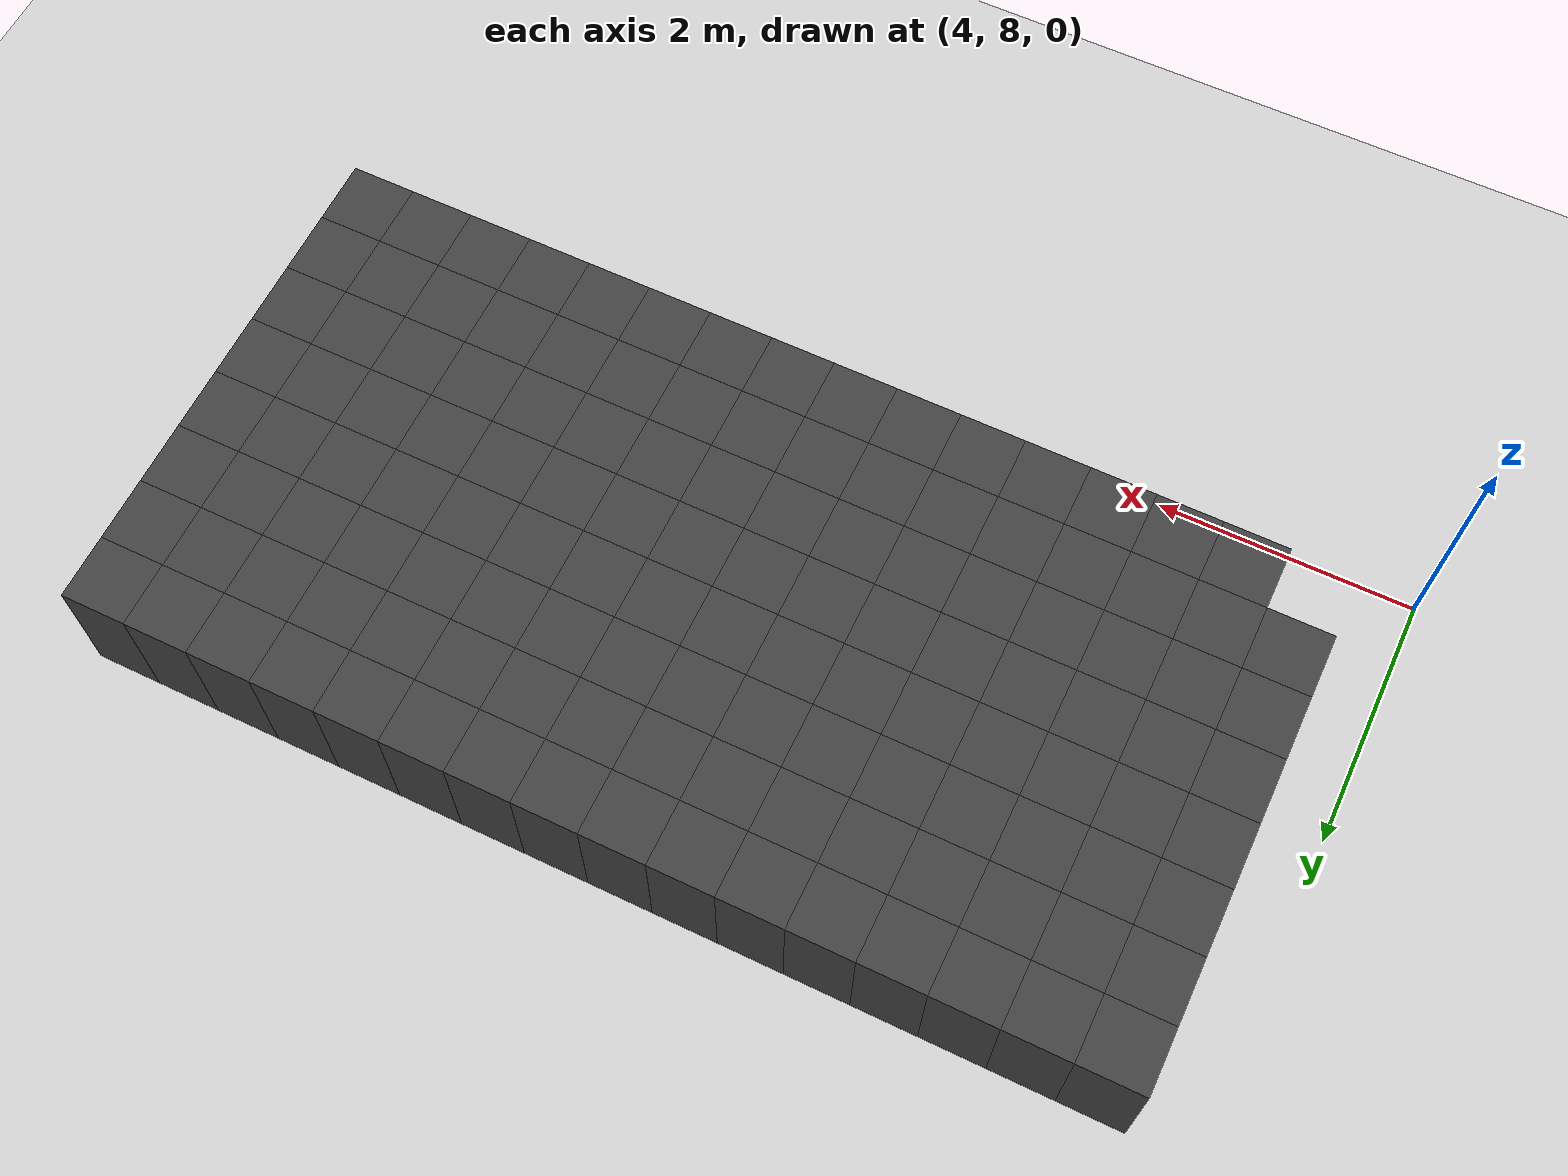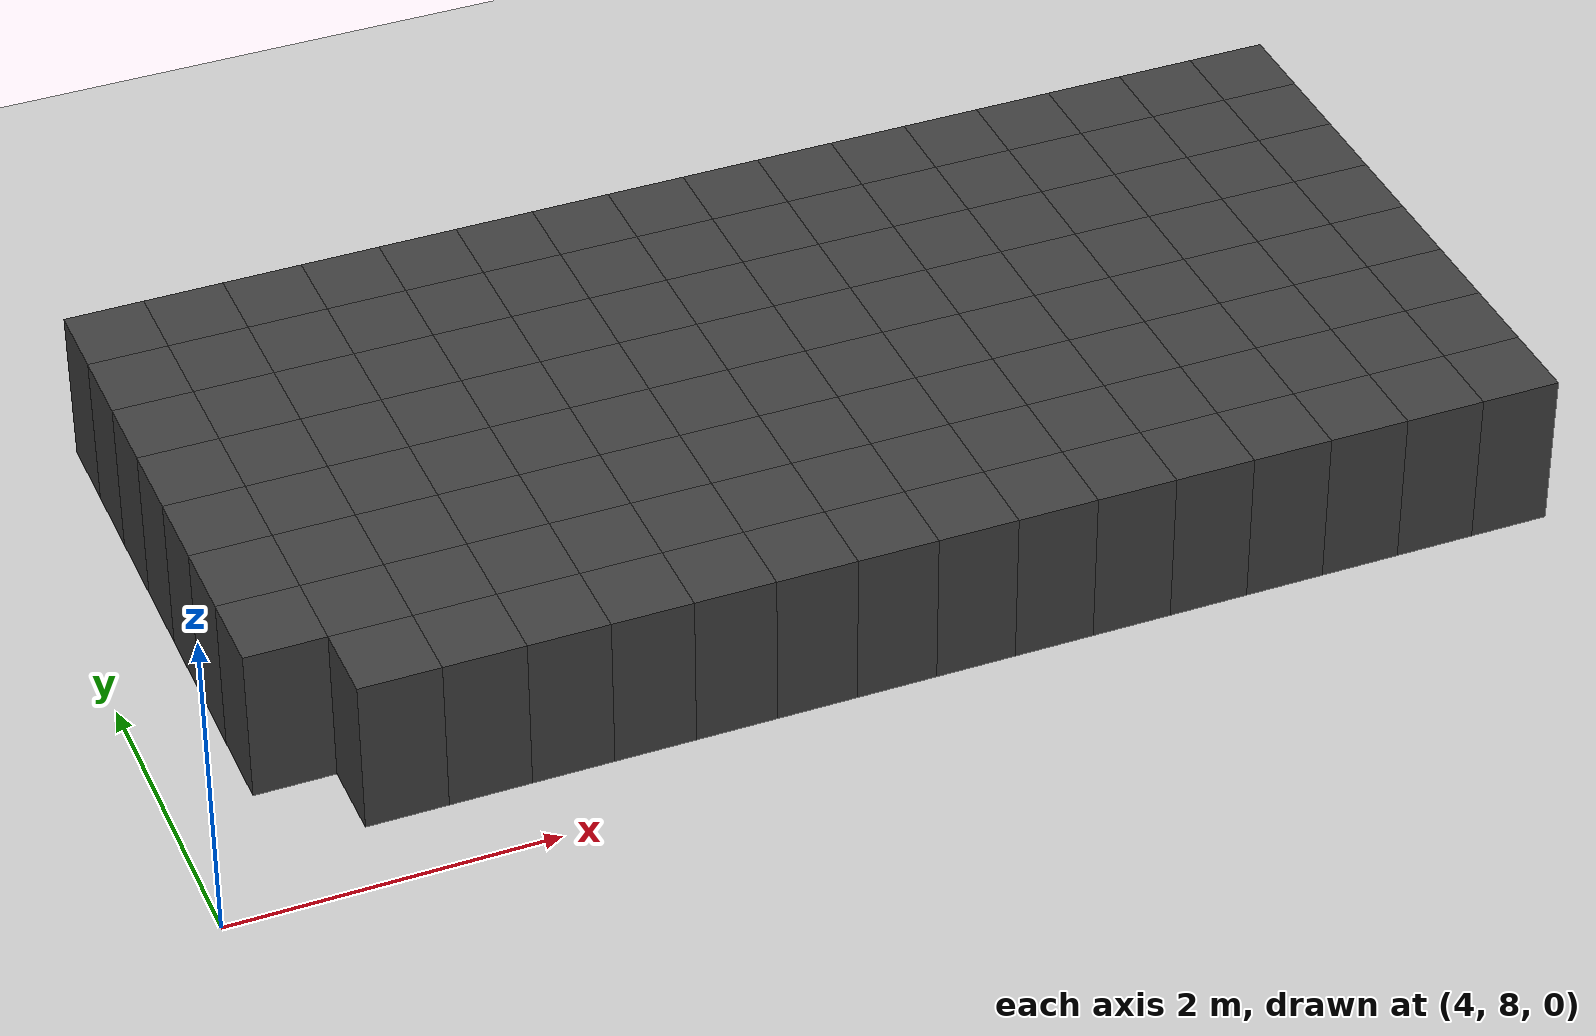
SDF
<sdf version="1.7">
 <world name="map_11672">
  <model name="ground_plane">
   <static>true</static>
   <link name="link">
    <collision name="collision">
     <geometry><plane><normal>0 0 1</normal><size>200 200</size></plane></geometry>
    </collision>
    <visual name="visual">
     <geometry><plane><normal>0 0 1</normal><size>200 200</size></plane></geometry>
     <material><ambient>0.8 0.8 0.8 1</ambient><diffuse>0.8 0.8 0.8 1</diffuse></material>
    </visual>
   </link>
  </model>
  <model name="maze_environment">
   <static>true</static>
   <link name="wall_34">
    <pose>4.750 12.250 0.500 0 0 0</pose>
    <collision name="col"><geometry><box><size>0.5 0.5 1.0</size></box></geometry></collision>
    <visual name="vis">
     <geometry><box><size>0.5 0.5 1.0</size></box></geometry>
     <material><ambient>0.15 0.15 0.15 1</ambient><diffuse>0.25 0.25 0.25 1</diffuse></material>
    </visual>
   </link>
   <link name="wall_35">
    <pose>5.250 12.250 0.500 0 0 0</pose>
    <collision name="col"><geometry><box><size>0.5 0.5 1.0</size></box></geometry></collision>
    <visual name="vis">
     <geometry><box><size>0.5 0.5 1.0</size></box></geometry>
     <material><ambient>0.15 0.15 0.15 1</ambient><diffuse>0.25 0.25 0.25 1</diffuse></material>
    </visual>
   </link>
   <link name="wall_36">
    <pose>5.750 12.250 0.500 0 0 0</pose>
    <collision name="col"><geometry><box><size>0.5 0.5 1.0</size></box></geometry></collision>
    <visual name="vis">
     <geometry><box><size>0.5 0.5 1.0</size></box></geometry>
     <material><ambient>0.15 0.15 0.15 1</ambient><diffuse>0.25 0.25 0.25 1</diffuse></material>
    </visual>
   </link>
   <link name="wall_37">
    <pose>6.250 12.250 0.500 0 0 0</pose>
    <collision name="col"><geometry><box><size>0.5 0.5 1.0</size></box></geometry></collision>
    <visual name="vis">
     <geometry><box><size>0.5 0.5 1.0</size></box></geometry>
     <material><ambient>0.15 0.15 0.15 1</ambient><diffuse>0.25 0.25 0.25 1</diffuse></material>
    </visual>
   </link>
   <link name="wall_38">
    <pose>6.750 12.250 0.500 0 0 0</pose>
    <collision name="col"><geometry><box><size>0.5 0.5 1.0</size></box></geometry></collision>
    <visual name="vis">
     <geometry><box><size>0.5 0.5 1.0</size></box></geometry>
     <material><ambient>0.15 0.15 0.15 1</ambient><diffuse>0.25 0.25 0.25 1</diffuse></material>
    </visual>
   </link>
   <link name="wall_39">
    <pose>7.250 12.250 0.500 0 0 0</pose>
    <collision name="col"><geometry><box><size>0.5 0.5 1.0</size></box></geometry></collision>
    <visual name="vis">
     <geometry><box><size>0.5 0.5 1.0</size></box></geometry>
     <material><ambient>0.15 0.15 0.15 1</ambient><diffuse>0.25 0.25 0.25 1</diffuse></material>
    </visual>
   </link>
   <link name="wall_40">
    <pose>7.750 12.250 0.500 0 0 0</pose>
    <collision name="col"><geometry><box><size>0.5 0.5 1.0</size></box></geometry></collision>
    <visual name="vis">
     <geometry><box><size>0.5 0.5 1.0</size></box></geometry>
     <material><ambient>0.15 0.15 0.15 1</ambient><diffuse>0.25 0.25 0.25 1</diffuse></material>
    </visual>
   </link>
   <link name="wall_41">
    <pose>8.250 12.250 0.500 0 0 0</pose>
    <collision name="col"><geometry><box><size>0.5 0.5 1.0</size></box></geometry></collision>
    <visual name="vis">
     <geometry><box><size>0.5 0.5 1.0</size></box></geometry>
     <material><ambient>0.15 0.15 0.15 1</ambient><diffuse>0.25 0.25 0.25 1</diffuse></material>
    </visual>
   </link>
   <link name="wall_42">
    <pose>8.750 12.250 0.500 0 0 0</pose>
    <collision name="col"><geometry><box><size>0.5 0.5 1.0</size></box></geometry></collision>
    <visual name="vis">
     <geometry><box><size>0.5 0.5 1.0</size></box></geometry>
     <material><ambient>0.15 0.15 0.15 1</ambient><diffuse>0.25 0.25 0.25 1</diffuse></material>
    </visual>
   </link>
   <link name="wall_43">
    <pose>9.250 12.250 0.500 0 0 0</pose>
    <collision name="col"><geometry><box><size>0.5 0.5 1.0</size></box></geometry></collision>
    <visual name="vis">
     <geometry><box><size>0.5 0.5 1.0</size></box></geometry>
     <material><ambient>0.15 0.15 0.15 1</ambient><diffuse>0.25 0.25 0.25 1</diffuse></material>
    </visual>
   </link>
   <link name="wall_44">
    <pose>9.750 12.250 0.500 0 0 0</pose>
    <collision name="col"><geometry><box><size>0.5 0.5 1.0</size></box></geometry></collision>
    <visual name="vis">
     <geometry><box><size>0.5 0.5 1.0</size></box></geometry>
     <material><ambient>0.15 0.15 0.15 1</ambient><diffuse>0.25 0.25 0.25 1</diffuse></material>
    </visual>
   </link>
   <link name="wall_45">
    <pose>10.250 12.250 0.500 0 0 0</pose>
    <collision name="col"><geometry><box><size>0.5 0.5 1.0</size></box></geometry></collision>
    <visual name="vis">
     <geometry><box><size>0.5 0.5 1.0</size></box></geometry>
     <material><ambient>0.15 0.15 0.15 1</ambient><diffuse>0.25 0.25 0.25 1</diffuse></material>
    </visual>
   </link>
   <link name="wall_46">
    <pose>10.750 12.250 0.500 0 0 0</pose>
    <collision name="col"><geometry><box><size>0.5 0.5 1.0</size></box></geometry></collision>
    <visual name="vis">
     <geometry><box><size>0.5 0.5 1.0</size></box></geometry>
     <material><ambient>0.15 0.15 0.15 1</ambient><diffuse>0.25 0.25 0.25 1</diffuse></material>
    </visual>
   </link>
   <link name="wall_47">
    <pose>11.250 12.250 0.500 0 0 0</pose>
    <collision name="col"><geometry><box><size>0.5 0.5 1.0</size></box></geometry></collision>
    <visual name="vis">
     <geometry><box><size>0.5 0.5 1.0</size></box></geometry>
     <material><ambient>0.15 0.15 0.15 1</ambient><diffuse>0.25 0.25 0.25 1</diffuse></material>
    </visual>
   </link>
   <link name="wall_48">
    <pose>11.750 12.250 0.500 0 0 0</pose>
    <collision name="col"><geometry><box><size>0.5 0.5 1.0</size></box></geometry></collision>
    <visual name="vis">
     <geometry><box><size>0.5 0.5 1.0</size></box></geometry>
     <material><ambient>0.15 0.15 0.15 1</ambient><diffuse>0.25 0.25 0.25 1</diffuse></material>
    </visual>
   </link>
   <link name="wall_49">
    <pose>12.250 12.250 0.500 0 0 0</pose>
    <collision name="col"><geometry><box><size>0.5 0.5 1.0</size></box></geometry></collision>
    <visual name="vis">
     <geometry><box><size>0.5 0.5 1.0</size></box></geometry>
     <material><ambient>0.15 0.15 0.15 1</ambient><diffuse>0.25 0.25 0.25 1</diffuse></material>
    </visual>
   </link>
   <link name="wall_81">
    <pose>4.750 11.750 0.500 0 0 0</pose>
    <collision name="col"><geometry><box><size>0.5 0.5 1.0</size></box></geometry></collision>
    <visual name="vis">
     <geometry><box><size>0.5 0.5 1.0</size></box></geometry>
     <material><ambient>0.15 0.15 0.15 1</ambient><diffuse>0.25 0.25 0.25 1</diffuse></material>
    </visual>
   </link>
   <link name="wall_82">
    <pose>5.250 11.750 0.500 0 0 0</pose>
    <collision name="col"><geometry><box><size>0.5 0.5 1.0</size></box></geometry></collision>
    <visual name="vis">
     <geometry><box><size>0.5 0.5 1.0</size></box></geometry>
     <material><ambient>0.15 0.15 0.15 1</ambient><diffuse>0.25 0.25 0.25 1</diffuse></material>
    </visual>
   </link>
   <link name="wall_83">
    <pose>5.750 11.750 0.500 0 0 0</pose>
    <collision name="col"><geometry><box><size>0.5 0.5 1.0</size></box></geometry></collision>
    <visual name="vis">
     <geometry><box><size>0.5 0.5 1.0</size></box></geometry>
     <material><ambient>0.15 0.15 0.15 1</ambient><diffuse>0.25 0.25 0.25 1</diffuse></material>
    </visual>
   </link>
   <link name="wall_84">
    <pose>6.250 11.750 0.500 0 0 0</pose>
    <collision name="col"><geometry><box><size>0.5 0.5 1.0</size></box></geometry></collision>
    <visual name="vis">
     <geometry><box><size>0.5 0.5 1.0</size></box></geometry>
     <material><ambient>0.15 0.15 0.15 1</ambient><diffuse>0.25 0.25 0.25 1</diffuse></material>
    </visual>
   </link>
   <link name="wall_85">
    <pose>6.750 11.750 0.500 0 0 0</pose>
    <collision name="col"><geometry><box><size>0.5 0.5 1.0</size></box></geometry></collision>
    <visual name="vis">
     <geometry><box><size>0.5 0.5 1.0</size></box></geometry>
     <material><ambient>0.15 0.15 0.15 1</ambient><diffuse>0.25 0.25 0.25 1</diffuse></material>
    </visual>
   </link>
   <link name="wall_86">
    <pose>7.250 11.750 0.500 0 0 0</pose>
    <collision name="col"><geometry><box><size>0.5 0.5 1.0</size></box></geometry></collision>
    <visual name="vis">
     <geometry><box><size>0.5 0.5 1.0</size></box></geometry>
     <material><ambient>0.15 0.15 0.15 1</ambient><diffuse>0.25 0.25 0.25 1</diffuse></material>
    </visual>
   </link>
   <link name="wall_87">
    <pose>7.750 11.750 0.500 0 0 0</pose>
    <collision name="col"><geometry><box><size>0.5 0.5 1.0</size></box></geometry></collision>
    <visual name="vis">
     <geometry><box><size>0.5 0.5 1.0</size></box></geometry>
     <material><ambient>0.15 0.15 0.15 1</ambient><diffuse>0.25 0.25 0.25 1</diffuse></material>
    </visual>
   </link>
   <link name="wall_88">
    <pose>8.250 11.750 0.500 0 0 0</pose>
    <collision name="col"><geometry><box><size>0.5 0.5 1.0</size></box></geometry></collision>
    <visual name="vis">
     <geometry><box><size>0.5 0.5 1.0</size></box></geometry>
     <material><ambient>0.15 0.15 0.15 1</ambient><diffuse>0.25 0.25 0.25 1</diffuse></material>
    </visual>
   </link>
   <link name="wall_89">
    <pose>8.750 11.750 0.500 0 0 0</pose>
    <collision name="col"><geometry><box><size>0.5 0.5 1.0</size></box></geometry></collision>
    <visual name="vis">
     <geometry><box><size>0.5 0.5 1.0</size></box></geometry>
     <material><ambient>0.15 0.15 0.15 1</ambient><diffuse>0.25 0.25 0.25 1</diffuse></material>
    </visual>
   </link>
   <link name="wall_90">
    <pose>9.250 11.750 0.500 0 0 0</pose>
    <collision name="col"><geometry><box><size>0.5 0.5 1.0</size></box></geometry></collision>
    <visual name="vis">
     <geometry><box><size>0.5 0.5 1.0</size></box></geometry>
     <material><ambient>0.15 0.15 0.15 1</ambient><diffuse>0.25 0.25 0.25 1</diffuse></material>
    </visual>
   </link>
   <link name="wall_91">
    <pose>9.750 11.750 0.500 0 0 0</pose>
    <collision name="col"><geometry><box><size>0.5 0.5 1.0</size></box></geometry></collision>
    <visual name="vis">
     <geometry><box><size>0.5 0.5 1.0</size></box></geometry>
     <material><ambient>0.15 0.15 0.15 1</ambient><diffuse>0.25 0.25 0.25 1</diffuse></material>
    </visual>
   </link>
   <link name="wall_92">
    <pose>10.250 11.750 0.500 0 0 0</pose>
    <collision name="col"><geometry><box><size>0.5 0.5 1.0</size></box></geometry></collision>
    <visual name="vis">
     <geometry><box><size>0.5 0.5 1.0</size></box></geometry>
     <material><ambient>0.15 0.15 0.15 1</ambient><diffuse>0.25 0.25 0.25 1</diffuse></material>
    </visual>
   </link>
   <link name="wall_93">
    <pose>10.750 11.750 0.500 0 0 0</pose>
    <collision name="col"><geometry><box><size>0.5 0.5 1.0</size></box></geometry></collision>
    <visual name="vis">
     <geometry><box><size>0.5 0.5 1.0</size></box></geometry>
     <material><ambient>0.15 0.15 0.15 1</ambient><diffuse>0.25 0.25 0.25 1</diffuse></material>
    </visual>
   </link>
   <link name="wall_94">
    <pose>11.250 11.750 0.500 0 0 0</pose>
    <collision name="col"><geometry><box><size>0.5 0.5 1.0</size></box></geometry></collision>
    <visual name="vis">
     <geometry><box><size>0.5 0.5 1.0</size></box></geometry>
     <material><ambient>0.15 0.15 0.15 1</ambient><diffuse>0.25 0.25 0.25 1</diffuse></material>
    </visual>
   </link>
   <link name="wall_95">
    <pose>11.750 11.750 0.500 0 0 0</pose>
    <collision name="col"><geometry><box><size>0.5 0.5 1.0</size></box></geometry></collision>
    <visual name="vis">
     <geometry><box><size>0.5 0.5 1.0</size></box></geometry>
     <material><ambient>0.15 0.15 0.15 1</ambient><diffuse>0.25 0.25 0.25 1</diffuse></material>
    </visual>
   </link>
   <link name="wall_96">
    <pose>12.250 11.750 0.500 0 0 0</pose>
    <collision name="col"><geometry><box><size>0.5 0.5 1.0</size></box></geometry></collision>
    <visual name="vis">
     <geometry><box><size>0.5 0.5 1.0</size></box></geometry>
     <material><ambient>0.15 0.15 0.15 1</ambient><diffuse>0.25 0.25 0.25 1</diffuse></material>
    </visual>
   </link>
   <link name="wall_128">
    <pose>4.750 11.250 0.500 0 0 0</pose>
    <collision name="col"><geometry><box><size>0.5 0.5 1.0</size></box></geometry></collision>
    <visual name="vis">
     <geometry><box><size>0.5 0.5 1.0</size></box></geometry>
     <material><ambient>0.15 0.15 0.15 1</ambient><diffuse>0.25 0.25 0.25 1</diffuse></material>
    </visual>
   </link>
   <link name="wall_129">
    <pose>5.250 11.250 0.500 0 0 0</pose>
    <collision name="col"><geometry><box><size>0.5 0.5 1.0</size></box></geometry></collision>
    <visual name="vis">
     <geometry><box><size>0.5 0.5 1.0</size></box></geometry>
     <material><ambient>0.15 0.15 0.15 1</ambient><diffuse>0.25 0.25 0.25 1</diffuse></material>
    </visual>
   </link>
   <link name="wall_130">
    <pose>5.750 11.250 0.500 0 0 0</pose>
    <collision name="col"><geometry><box><size>0.5 0.5 1.0</size></box></geometry></collision>
    <visual name="vis">
     <geometry><box><size>0.5 0.5 1.0</size></box></geometry>
     <material><ambient>0.15 0.15 0.15 1</ambient><diffuse>0.25 0.25 0.25 1</diffuse></material>
    </visual>
   </link>
   <link name="wall_131">
    <pose>6.250 11.250 0.500 0 0 0</pose>
    <collision name="col"><geometry><box><size>0.5 0.5 1.0</size></box></geometry></collision>
    <visual name="vis">
     <geometry><box><size>0.5 0.5 1.0</size></box></geometry>
     <material><ambient>0.15 0.15 0.15 1</ambient><diffuse>0.25 0.25 0.25 1</diffuse></material>
    </visual>
   </link>
   <link name="wall_132">
    <pose>6.750 11.250 0.500 0 0 0</pose>
    <collision name="col"><geometry><box><size>0.5 0.5 1.0</size></box></geometry></collision>
    <visual name="vis">
     <geometry><box><size>0.5 0.5 1.0</size></box></geometry>
     <material><ambient>0.15 0.15 0.15 1</ambient><diffuse>0.25 0.25 0.25 1</diffuse></material>
    </visual>
   </link>
   <link name="wall_133">
    <pose>7.250 11.250 0.500 0 0 0</pose>
    <collision name="col"><geometry><box><size>0.5 0.5 1.0</size></box></geometry></collision>
    <visual name="vis">
     <geometry><box><size>0.5 0.5 1.0</size></box></geometry>
     <material><ambient>0.15 0.15 0.15 1</ambient><diffuse>0.25 0.25 0.25 1</diffuse></material>
    </visual>
   </link>
   <link name="wall_134">
    <pose>7.750 11.250 0.500 0 0 0</pose>
    <collision name="col"><geometry><box><size>0.5 0.5 1.0</size></box></geometry></collision>
    <visual name="vis">
     <geometry><box><size>0.5 0.5 1.0</size></box></geometry>
     <material><ambient>0.15 0.15 0.15 1</ambient><diffuse>0.25 0.25 0.25 1</diffuse></material>
    </visual>
   </link>
   <link name="wall_135">
    <pose>8.250 11.250 0.500 0 0 0</pose>
    <collision name="col"><geometry><box><size>0.5 0.5 1.0</size></box></geometry></collision>
    <visual name="vis">
     <geometry><box><size>0.5 0.5 1.0</size></box></geometry>
     <material><ambient>0.15 0.15 0.15 1</ambient><diffuse>0.25 0.25 0.25 1</diffuse></material>
    </visual>
   </link>
   <link name="wall_136">
    <pose>8.750 11.250 0.500 0 0 0</pose>
    <collision name="col"><geometry><box><size>0.5 0.5 1.0</size></box></geometry></collision>
    <visual name="vis">
     <geometry><box><size>0.5 0.5 1.0</size></box></geometry>
     <material><ambient>0.15 0.15 0.15 1</ambient><diffuse>0.25 0.25 0.25 1</diffuse></material>
    </visual>
   </link>
   <link name="wall_137">
    <pose>9.250 11.250 0.500 0 0 0</pose>
    <collision name="col"><geometry><box><size>0.5 0.5 1.0</size></box></geometry></collision>
    <visual name="vis">
     <geometry><box><size>0.5 0.5 1.0</size></box></geometry>
     <material><ambient>0.15 0.15 0.15 1</ambient><diffuse>0.25 0.25 0.25 1</diffuse></material>
    </visual>
   </link>
   <link name="wall_138">
    <pose>9.750 11.250 0.500 0 0 0</pose>
    <collision name="col"><geometry><box><size>0.5 0.5 1.0</size></box></geometry></collision>
    <visual name="vis">
     <geometry><box><size>0.5 0.5 1.0</size></box></geometry>
     <material><ambient>0.15 0.15 0.15 1</ambient><diffuse>0.25 0.25 0.25 1</diffuse></material>
    </visual>
   </link>
   <link name="wall_139">
    <pose>10.250 11.250 0.500 0 0 0</pose>
    <collision name="col"><geometry><box><size>0.5 0.5 1.0</size></box></geometry></collision>
    <visual name="vis">
     <geometry><box><size>0.5 0.5 1.0</size></box></geometry>
     <material><ambient>0.15 0.15 0.15 1</ambient><diffuse>0.25 0.25 0.25 1</diffuse></material>
    </visual>
   </link>
   <link name="wall_140">
    <pose>10.750 11.250 0.500 0 0 0</pose>
    <collision name="col"><geometry><box><size>0.5 0.5 1.0</size></box></geometry></collision>
    <visual name="vis">
     <geometry><box><size>0.5 0.5 1.0</size></box></geometry>
     <material><ambient>0.15 0.15 0.15 1</ambient><diffuse>0.25 0.25 0.25 1</diffuse></material>
    </visual>
   </link>
   <link name="wall_141">
    <pose>11.250 11.250 0.500 0 0 0</pose>
    <collision name="col"><geometry><box><size>0.5 0.5 1.0</size></box></geometry></collision>
    <visual name="vis">
     <geometry><box><size>0.5 0.5 1.0</size></box></geometry>
     <material><ambient>0.15 0.15 0.15 1</ambient><diffuse>0.25 0.25 0.25 1</diffuse></material>
    </visual>
   </link>
   <link name="wall_142">
    <pose>11.750 11.250 0.500 0 0 0</pose>
    <collision name="col"><geometry><box><size>0.5 0.5 1.0</size></box></geometry></collision>
    <visual name="vis">
     <geometry><box><size>0.5 0.5 1.0</size></box></geometry>
     <material><ambient>0.15 0.15 0.15 1</ambient><diffuse>0.25 0.25 0.25 1</diffuse></material>
    </visual>
   </link>
   <link name="wall_143">
    <pose>12.250 11.250 0.500 0 0 0</pose>
    <collision name="col"><geometry><box><size>0.5 0.5 1.0</size></box></geometry></collision>
    <visual name="vis">
     <geometry><box><size>0.5 0.5 1.0</size></box></geometry>
     <material><ambient>0.15 0.15 0.15 1</ambient><diffuse>0.25 0.25 0.25 1</diffuse></material>
    </visual>
   </link>
   <link name="wall_175">
    <pose>4.750 10.750 0.500 0 0 0</pose>
    <collision name="col"><geometry><box><size>0.5 0.5 1.0</size></box></geometry></collision>
    <visual name="vis">
     <geometry><box><size>0.5 0.5 1.0</size></box></geometry>
     <material><ambient>0.15 0.15 0.15 1</ambient><diffuse>0.25 0.25 0.25 1</diffuse></material>
    </visual>
   </link>
   <link name="wall_176">
    <pose>5.250 10.750 0.500 0 0 0</pose>
    <collision name="col"><geometry><box><size>0.5 0.5 1.0</size></box></geometry></collision>
    <visual name="vis">
     <geometry><box><size>0.5 0.5 1.0</size></box></geometry>
     <material><ambient>0.15 0.15 0.15 1</ambient><diffuse>0.25 0.25 0.25 1</diffuse></material>
    </visual>
   </link>
   <link name="wall_177">
    <pose>5.750 10.750 0.500 0 0 0</pose>
    <collision name="col"><geometry><box><size>0.5 0.5 1.0</size></box></geometry></collision>
    <visual name="vis">
     <geometry><box><size>0.5 0.5 1.0</size></box></geometry>
     <material><ambient>0.15 0.15 0.15 1</ambient><diffuse>0.25 0.25 0.25 1</diffuse></material>
    </visual>
   </link>
   <link name="wall_178">
    <pose>6.250 10.750 0.500 0 0 0</pose>
    <collision name="col"><geometry><box><size>0.5 0.5 1.0</size></box></geometry></collision>
    <visual name="vis">
     <geometry><box><size>0.5 0.5 1.0</size></box></geometry>
     <material><ambient>0.15 0.15 0.15 1</ambient><diffuse>0.25 0.25 0.25 1</diffuse></material>
    </visual>
   </link>
   <link name="wall_179">
    <pose>6.750 10.750 0.500 0 0 0</pose>
    <collision name="col"><geometry><box><size>0.5 0.5 1.0</size></box></geometry></collision>
    <visual name="vis">
     <geometry><box><size>0.5 0.5 1.0</size></box></geometry>
     <material><ambient>0.15 0.15 0.15 1</ambient><diffuse>0.25 0.25 0.25 1</diffuse></material>
    </visual>
   </link>
   <link name="wall_180">
    <pose>7.250 10.750 0.500 0 0 0</pose>
    <collision name="col"><geometry><box><size>0.5 0.5 1.0</size></box></geometry></collision>
    <visual name="vis">
     <geometry><box><size>0.5 0.5 1.0</size></box></geometry>
     <material><ambient>0.15 0.15 0.15 1</ambient><diffuse>0.25 0.25 0.25 1</diffuse></material>
    </visual>
   </link>
   <link name="wall_181">
    <pose>7.750 10.750 0.500 0 0 0</pose>
    <collision name="col"><geometry><box><size>0.5 0.5 1.0</size></box></geometry></collision>
    <visual name="vis">
     <geometry><box><size>0.5 0.5 1.0</size></box></geometry>
     <material><ambient>0.15 0.15 0.15 1</ambient><diffuse>0.25 0.25 0.25 1</diffuse></material>
    </visual>
   </link>
   <link name="wall_182">
    <pose>8.250 10.750 0.500 0 0 0</pose>
    <collision name="col"><geometry><box><size>0.5 0.5 1.0</size></box></geometry></collision>
    <visual name="vis">
     <geometry><box><size>0.5 0.5 1.0</size></box></geometry>
     <material><ambient>0.15 0.15 0.15 1</ambient><diffuse>0.25 0.25 0.25 1</diffuse></material>
    </visual>
   </link>
   <link name="wall_183">
    <pose>8.750 10.750 0.500 0 0 0</pose>
    <collision name="col"><geometry><box><size>0.5 0.5 1.0</size></box></geometry></collision>
    <visual name="vis">
     <geometry><box><size>0.5 0.5 1.0</size></box></geometry>
     <material><ambient>0.15 0.15 0.15 1</ambient><diffuse>0.25 0.25 0.25 1</diffuse></material>
    </visual>
   </link>
   <link name="wall_184">
    <pose>9.250 10.750 0.500 0 0 0</pose>
    <collision name="col"><geometry><box><size>0.5 0.5 1.0</size></box></geometry></collision>
    <visual name="vis">
     <geometry><box><size>0.5 0.5 1.0</size></box></geometry>
     <material><ambient>0.15 0.15 0.15 1</ambient><diffuse>0.25 0.25 0.25 1</diffuse></material>
    </visual>
   </link>
   <link name="wall_185">
    <pose>9.750 10.750 0.500 0 0 0</pose>
    <collision name="col"><geometry><box><size>0.5 0.5 1.0</size></box></geometry></collision>
    <visual name="vis">
     <geometry><box><size>0.5 0.5 1.0</size></box></geometry>
     <material><ambient>0.15 0.15 0.15 1</ambient><diffuse>0.25 0.25 0.25 1</diffuse></material>
    </visual>
   </link>
   <link name="wall_186">
    <pose>10.250 10.750 0.500 0 0 0</pose>
    <collision name="col"><geometry><box><size>0.5 0.5 1.0</size></box></geometry></collision>
    <visual name="vis">
     <geometry><box><size>0.5 0.5 1.0</size></box></geometry>
     <material><ambient>0.15 0.15 0.15 1</ambient><diffuse>0.25 0.25 0.25 1</diffuse></material>
    </visual>
   </link>
   <link name="wall_187">
    <pose>10.750 10.750 0.500 0 0 0</pose>
    <collision name="col"><geometry><box><size>0.5 0.5 1.0</size></box></geometry></collision>
    <visual name="vis">
     <geometry><box><size>0.5 0.5 1.0</size></box></geometry>
     <material><ambient>0.15 0.15 0.15 1</ambient><diffuse>0.25 0.25 0.25 1</diffuse></material>
    </visual>
   </link>
   <link name="wall_188">
    <pose>11.250 10.750 0.500 0 0 0</pose>
    <collision name="col"><geometry><box><size>0.5 0.5 1.0</size></box></geometry></collision>
    <visual name="vis">
     <geometry><box><size>0.5 0.5 1.0</size></box></geometry>
     <material><ambient>0.15 0.15 0.15 1</ambient><diffuse>0.25 0.25 0.25 1</diffuse></material>
    </visual>
   </link>
   <link name="wall_189">
    <pose>11.750 10.750 0.500 0 0 0</pose>
    <collision name="col"><geometry><box><size>0.5 0.5 1.0</size></box></geometry></collision>
    <visual name="vis">
     <geometry><box><size>0.5 0.5 1.0</size></box></geometry>
     <material><ambient>0.15 0.15 0.15 1</ambient><diffuse>0.25 0.25 0.25 1</diffuse></material>
    </visual>
   </link>
   <link name="wall_190">
    <pose>12.250 10.750 0.500 0 0 0</pose>
    <collision name="col"><geometry><box><size>0.5 0.5 1.0</size></box></geometry></collision>
    <visual name="vis">
     <geometry><box><size>0.5 0.5 1.0</size></box></geometry>
     <material><ambient>0.15 0.15 0.15 1</ambient><diffuse>0.25 0.25 0.25 1</diffuse></material>
    </visual>
   </link>
   <link name="wall_224">
    <pose>4.750 10.250 0.500 0 0 0</pose>
    <collision name="col"><geometry><box><size>0.5 0.5 1.0</size></box></geometry></collision>
    <visual name="vis">
     <geometry><box><size>0.5 0.5 1.0</size></box></geometry>
     <material><ambient>0.15 0.15 0.15 1</ambient><diffuse>0.25 0.25 0.25 1</diffuse></material>
    </visual>
   </link>
   <link name="wall_225">
    <pose>5.250 10.250 0.500 0 0 0</pose>
    <collision name="col"><geometry><box><size>0.5 0.5 1.0</size></box></geometry></collision>
    <visual name="vis">
     <geometry><box><size>0.5 0.5 1.0</size></box></geometry>
     <material><ambient>0.15 0.15 0.15 1</ambient><diffuse>0.25 0.25 0.25 1</diffuse></material>
    </visual>
   </link>
   <link name="wall_226">
    <pose>5.750 10.250 0.500 0 0 0</pose>
    <collision name="col"><geometry><box><size>0.5 0.5 1.0</size></box></geometry></collision>
    <visual name="vis">
     <geometry><box><size>0.5 0.5 1.0</size></box></geometry>
     <material><ambient>0.15 0.15 0.15 1</ambient><diffuse>0.25 0.25 0.25 1</diffuse></material>
    </visual>
   </link>
   <link name="wall_227">
    <pose>6.250 10.250 0.500 0 0 0</pose>
    <collision name="col"><geometry><box><size>0.5 0.5 1.0</size></box></geometry></collision>
    <visual name="vis">
     <geometry><box><size>0.5 0.5 1.0</size></box></geometry>
     <material><ambient>0.15 0.15 0.15 1</ambient><diffuse>0.25 0.25 0.25 1</diffuse></material>
    </visual>
   </link>
   <link name="wall_228">
    <pose>6.750 10.250 0.500 0 0 0</pose>
    <collision name="col"><geometry><box><size>0.5 0.5 1.0</size></box></geometry></collision>
    <visual name="vis">
     <geometry><box><size>0.5 0.5 1.0</size></box></geometry>
     <material><ambient>0.15 0.15 0.15 1</ambient><diffuse>0.25 0.25 0.25 1</diffuse></material>
    </visual>
   </link>
   <link name="wall_229">
    <pose>7.250 10.250 0.500 0 0 0</pose>
    <collision name="col"><geometry><box><size>0.5 0.5 1.0</size></box></geometry></collision>
    <visual name="vis">
     <geometry><box><size>0.5 0.5 1.0</size></box></geometry>
     <material><ambient>0.15 0.15 0.15 1</ambient><diffuse>0.25 0.25 0.25 1</diffuse></material>
    </visual>
   </link>
   <link name="wall_230">
    <pose>7.750 10.250 0.500 0 0 0</pose>
    <collision name="col"><geometry><box><size>0.5 0.5 1.0</size></box></geometry></collision>
    <visual name="vis">
     <geometry><box><size>0.5 0.5 1.0</size></box></geometry>
     <material><ambient>0.15 0.15 0.15 1</ambient><diffuse>0.25 0.25 0.25 1</diffuse></material>
    </visual>
   </link>
   <link name="wall_231">
    <pose>8.250 10.250 0.500 0 0 0</pose>
    <collision name="col"><geometry><box><size>0.5 0.5 1.0</size></box></geometry></collision>
    <visual name="vis">
     <geometry><box><size>0.5 0.5 1.0</size></box></geometry>
     <material><ambient>0.15 0.15 0.15 1</ambient><diffuse>0.25 0.25 0.25 1</diffuse></material>
    </visual>
   </link>
   <link name="wall_232">
    <pose>8.750 10.250 0.500 0 0 0</pose>
    <collision name="col"><geometry><box><size>0.5 0.5 1.0</size></box></geometry></collision>
    <visual name="vis">
     <geometry><box><size>0.5 0.5 1.0</size></box></geometry>
     <material><ambient>0.15 0.15 0.15 1</ambient><diffuse>0.25 0.25 0.25 1</diffuse></material>
    </visual>
   </link>
   <link name="wall_233">
    <pose>9.250 10.250 0.500 0 0 0</pose>
    <collision name="col"><geometry><box><size>0.5 0.5 1.0</size></box></geometry></collision>
    <visual name="vis">
     <geometry><box><size>0.5 0.5 1.0</size></box></geometry>
     <material><ambient>0.15 0.15 0.15 1</ambient><diffuse>0.25 0.25 0.25 1</diffuse></material>
    </visual>
   </link>
   <link name="wall_234">
    <pose>9.750 10.250 0.500 0 0 0</pose>
    <collision name="col"><geometry><box><size>0.5 0.5 1.0</size></box></geometry></collision>
    <visual name="vis">
     <geometry><box><size>0.5 0.5 1.0</size></box></geometry>
     <material><ambient>0.15 0.15 0.15 1</ambient><diffuse>0.25 0.25 0.25 1</diffuse></material>
    </visual>
   </link>
   <link name="wall_235">
    <pose>10.250 10.250 0.500 0 0 0</pose>
    <collision name="col"><geometry><box><size>0.5 0.5 1.0</size></box></geometry></collision>
    <visual name="vis">
     <geometry><box><size>0.5 0.5 1.0</size></box></geometry>
     <material><ambient>0.15 0.15 0.15 1</ambient><diffuse>0.25 0.25 0.25 1</diffuse></material>
    </visual>
   </link>
   <link name="wall_236">
    <pose>10.750 10.250 0.500 0 0 0</pose>
    <collision name="col"><geometry><box><size>0.5 0.5 1.0</size></box></geometry></collision>
    <visual name="vis">
     <geometry><box><size>0.5 0.5 1.0</size></box></geometry>
     <material><ambient>0.15 0.15 0.15 1</ambient><diffuse>0.25 0.25 0.25 1</diffuse></material>
    </visual>
   </link>
   <link name="wall_237">
    <pose>11.250 10.250 0.500 0 0 0</pose>
    <collision name="col"><geometry><box><size>0.5 0.5 1.0</size></box></geometry></collision>
    <visual name="vis">
     <geometry><box><size>0.5 0.5 1.0</size></box></geometry>
     <material><ambient>0.15 0.15 0.15 1</ambient><diffuse>0.25 0.25 0.25 1</diffuse></material>
    </visual>
   </link>
   <link name="wall_238">
    <pose>11.750 10.250 0.500 0 0 0</pose>
    <collision name="col"><geometry><box><size>0.5 0.5 1.0</size></box></geometry></collision>
    <visual name="vis">
     <geometry><box><size>0.5 0.5 1.0</size></box></geometry>
     <material><ambient>0.15 0.15 0.15 1</ambient><diffuse>0.25 0.25 0.25 1</diffuse></material>
    </visual>
   </link>
   <link name="wall_239">
    <pose>12.250 10.250 0.500 0 0 0</pose>
    <collision name="col"><geometry><box><size>0.5 0.5 1.0</size></box></geometry></collision>
    <visual name="vis">
     <geometry><box><size>0.5 0.5 1.0</size></box></geometry>
     <material><ambient>0.15 0.15 0.15 1</ambient><diffuse>0.25 0.25 0.25 1</diffuse></material>
    </visual>
   </link>
   <link name="wall_273">
    <pose>4.750 9.750 0.500 0 0 0</pose>
    <collision name="col"><geometry><box><size>0.5 0.5 1.0</size></box></geometry></collision>
    <visual name="vis">
     <geometry><box><size>0.5 0.5 1.0</size></box></geometry>
     <material><ambient>0.15 0.15 0.15 1</ambient><diffuse>0.25 0.25 0.25 1</diffuse></material>
    </visual>
   </link>
   <link name="wall_274">
    <pose>5.250 9.750 0.500 0 0 0</pose>
    <collision name="col"><geometry><box><size>0.5 0.5 1.0</size></box></geometry></collision>
    <visual name="vis">
     <geometry><box><size>0.5 0.5 1.0</size></box></geometry>
     <material><ambient>0.15 0.15 0.15 1</ambient><diffuse>0.25 0.25 0.25 1</diffuse></material>
    </visual>
   </link>
   <link name="wall_275">
    <pose>5.750 9.750 0.500 0 0 0</pose>
    <collision name="col"><geometry><box><size>0.5 0.5 1.0</size></box></geometry></collision>
    <visual name="vis">
     <geometry><box><size>0.5 0.5 1.0</size></box></geometry>
     <material><ambient>0.15 0.15 0.15 1</ambient><diffuse>0.25 0.25 0.25 1</diffuse></material>
    </visual>
   </link>
   <link name="wall_276">
    <pose>6.250 9.750 0.500 0 0 0</pose>
    <collision name="col"><geometry><box><size>0.5 0.5 1.0</size></box></geometry></collision>
    <visual name="vis">
     <geometry><box><size>0.5 0.5 1.0</size></box></geometry>
     <material><ambient>0.15 0.15 0.15 1</ambient><diffuse>0.25 0.25 0.25 1</diffuse></material>
    </visual>
   </link>
   <link name="wall_277">
    <pose>6.750 9.750 0.500 0 0 0</pose>
    <collision name="col"><geometry><box><size>0.5 0.5 1.0</size></box></geometry></collision>
    <visual name="vis">
     <geometry><box><size>0.5 0.5 1.0</size></box></geometry>
     <material><ambient>0.15 0.15 0.15 1</ambient><diffuse>0.25 0.25 0.25 1</diffuse></material>
    </visual>
   </link>
   <link name="wall_278">
    <pose>7.250 9.750 0.500 0 0 0</pose>
    <collision name="col"><geometry><box><size>0.5 0.5 1.0</size></box></geometry></collision>
    <visual name="vis">
     <geometry><box><size>0.5 0.5 1.0</size></box></geometry>
     <material><ambient>0.15 0.15 0.15 1</ambient><diffuse>0.25 0.25 0.25 1</diffuse></material>
    </visual>
   </link>
   <link name="wall_279">
    <pose>7.750 9.750 0.500 0 0 0</pose>
    <collision name="col"><geometry><box><size>0.5 0.5 1.0</size></box></geometry></collision>
    <visual name="vis">
     <geometry><box><size>0.5 0.5 1.0</size></box></geometry>
     <material><ambient>0.15 0.15 0.15 1</ambient><diffuse>0.25 0.25 0.25 1</diffuse></material>
    </visual>
   </link>
   <link name="wall_280">
    <pose>8.250 9.750 0.500 0 0 0</pose>
    <collision name="col"><geometry><box><size>0.5 0.5 1.0</size></box></geometry></collision>
    <visual name="vis">
     <geometry><box><size>0.5 0.5 1.0</size></box></geometry>
     <material><ambient>0.15 0.15 0.15 1</ambient><diffuse>0.25 0.25 0.25 1</diffuse></material>
    </visual>
   </link>
   <link name="wall_281">
    <pose>8.750 9.750 0.500 0 0 0</pose>
    <collision name="col"><geometry><box><size>0.5 0.5 1.0</size></box></geometry></collision>
    <visual name="vis">
     <geometry><box><size>0.5 0.5 1.0</size></box></geometry>
     <material><ambient>0.15 0.15 0.15 1</ambient><diffuse>0.25 0.25 0.25 1</diffuse></material>
    </visual>
   </link>
   <link name="wall_282">
    <pose>9.250 9.750 0.500 0 0 0</pose>
    <collision name="col"><geometry><box><size>0.5 0.5 1.0</size></box></geometry></collision>
    <visual name="vis">
     <geometry><box><size>0.5 0.5 1.0</size></box></geometry>
     <material><ambient>0.15 0.15 0.15 1</ambient><diffuse>0.25 0.25 0.25 1</diffuse></material>
    </visual>
   </link>
   <link name="wall_283">
    <pose>9.750 9.750 0.500 0 0 0</pose>
    <collision name="col"><geometry><box><size>0.5 0.5 1.0</size></box></geometry></collision>
    <visual name="vis">
     <geometry><box><size>0.5 0.5 1.0</size></box></geometry>
     <material><ambient>0.15 0.15 0.15 1</ambient><diffuse>0.25 0.25 0.25 1</diffuse></material>
    </visual>
   </link>
   <link name="wall_284">
    <pose>10.250 9.750 0.500 0 0 0</pose>
    <collision name="col"><geometry><box><size>0.5 0.5 1.0</size></box></geometry></collision>
    <visual name="vis">
     <geometry><box><size>0.5 0.5 1.0</size></box></geometry>
     <material><ambient>0.15 0.15 0.15 1</ambient><diffuse>0.25 0.25 0.25 1</diffuse></material>
    </visual>
   </link>
   <link name="wall_285">
    <pose>10.750 9.750 0.500 0 0 0</pose>
    <collision name="col"><geometry><box><size>0.5 0.5 1.0</size></box></geometry></collision>
    <visual name="vis">
     <geometry><box><size>0.5 0.5 1.0</size></box></geometry>
     <material><ambient>0.15 0.15 0.15 1</ambient><diffuse>0.25 0.25 0.25 1</diffuse></material>
    </visual>
   </link>
   <link name="wall_286">
    <pose>11.250 9.750 0.500 0 0 0</pose>
    <collision name="col"><geometry><box><size>0.5 0.5 1.0</size></box></geometry></collision>
    <visual name="vis">
     <geometry><box><size>0.5 0.5 1.0</size></box></geometry>
     <material><ambient>0.15 0.15 0.15 1</ambient><diffuse>0.25 0.25 0.25 1</diffuse></material>
    </visual>
   </link>
   <link name="wall_287">
    <pose>11.750 9.750 0.500 0 0 0</pose>
    <collision name="col"><geometry><box><size>0.5 0.5 1.0</size></box></geometry></collision>
    <visual name="vis">
     <geometry><box><size>0.5 0.5 1.0</size></box></geometry>
     <material><ambient>0.15 0.15 0.15 1</ambient><diffuse>0.25 0.25 0.25 1</diffuse></material>
    </visual>
   </link>
   <link name="wall_288">
    <pose>12.250 9.750 0.500 0 0 0</pose>
    <collision name="col"><geometry><box><size>0.5 0.5 1.0</size></box></geometry></collision>
    <visual name="vis">
     <geometry><box><size>0.5 0.5 1.0</size></box></geometry>
     <material><ambient>0.15 0.15 0.15 1</ambient><diffuse>0.25 0.25 0.25 1</diffuse></material>
    </visual>
   </link>
   <link name="wall_322">
    <pose>4.750 9.250 0.500 0 0 0</pose>
    <collision name="col"><geometry><box><size>0.5 0.5 1.0</size></box></geometry></collision>
    <visual name="vis">
     <geometry><box><size>0.5 0.5 1.0</size></box></geometry>
     <material><ambient>0.15 0.15 0.15 1</ambient><diffuse>0.25 0.25 0.25 1</diffuse></material>
    </visual>
   </link>
   <link name="wall_323">
    <pose>5.250 9.250 0.500 0 0 0</pose>
    <collision name="col"><geometry><box><size>0.5 0.5 1.0</size></box></geometry></collision>
    <visual name="vis">
     <geometry><box><size>0.5 0.5 1.0</size></box></geometry>
     <material><ambient>0.15 0.15 0.15 1</ambient><diffuse>0.25 0.25 0.25 1</diffuse></material>
    </visual>
   </link>
   <link name="wall_324">
    <pose>5.750 9.250 0.500 0 0 0</pose>
    <collision name="col"><geometry><box><size>0.5 0.5 1.0</size></box></geometry></collision>
    <visual name="vis">
     <geometry><box><size>0.5 0.5 1.0</size></box></geometry>
     <material><ambient>0.15 0.15 0.15 1</ambient><diffuse>0.25 0.25 0.25 1</diffuse></material>
    </visual>
   </link>
   <link name="wall_325">
    <pose>6.250 9.250 0.500 0 0 0</pose>
    <collision name="col"><geometry><box><size>0.5 0.5 1.0</size></box></geometry></collision>
    <visual name="vis">
     <geometry><box><size>0.5 0.5 1.0</size></box></geometry>
     <material><ambient>0.15 0.15 0.15 1</ambient><diffuse>0.25 0.25 0.25 1</diffuse></material>
    </visual>
   </link>
   <link name="wall_326">
    <pose>6.750 9.250 0.500 0 0 0</pose>
    <collision name="col"><geometry><box><size>0.5 0.5 1.0</size></box></geometry></collision>
    <visual name="vis">
     <geometry><box><size>0.5 0.5 1.0</size></box></geometry>
     <material><ambient>0.15 0.15 0.15 1</ambient><diffuse>0.25 0.25 0.25 1</diffuse></material>
    </visual>
   </link>
   <link name="wall_327">
    <pose>7.250 9.250 0.500 0 0 0</pose>
    <collision name="col"><geometry><box><size>0.5 0.5 1.0</size></box></geometry></collision>
    <visual name="vis">
     <geometry><box><size>0.5 0.5 1.0</size></box></geometry>
     <material><ambient>0.15 0.15 0.15 1</ambient><diffuse>0.25 0.25 0.25 1</diffuse></material>
    </visual>
   </link>
   <link name="wall_328">
    <pose>7.750 9.250 0.500 0 0 0</pose>
    <collision name="col"><geometry><box><size>0.5 0.5 1.0</size></box></geometry></collision>
    <visual name="vis">
     <geometry><box><size>0.5 0.5 1.0</size></box></geometry>
     <material><ambient>0.15 0.15 0.15 1</ambient><diffuse>0.25 0.25 0.25 1</diffuse></material>
    </visual>
   </link>
   <link name="wall_329">
    <pose>8.250 9.250 0.500 0 0 0</pose>
    <collision name="col"><geometry><box><size>0.5 0.5 1.0</size></box></geometry></collision>
    <visual name="vis">
     <geometry><box><size>0.5 0.5 1.0</size></box></geometry>
     <material><ambient>0.15 0.15 0.15 1</ambient><diffuse>0.25 0.25 0.25 1</diffuse></material>
    </visual>
   </link>
   <link name="wall_330">
    <pose>8.750 9.250 0.500 0 0 0</pose>
    <collision name="col"><geometry><box><size>0.5 0.5 1.0</size></box></geometry></collision>
    <visual name="vis">
     <geometry><box><size>0.5 0.5 1.0</size></box></geometry>
     <material><ambient>0.15 0.15 0.15 1</ambient><diffuse>0.25 0.25 0.25 1</diffuse></material>
    </visual>
   </link>
   <link name="wall_331">
    <pose>9.250 9.250 0.500 0 0 0</pose>
    <collision name="col"><geometry><box><size>0.5 0.5 1.0</size></box></geometry></collision>
    <visual name="vis">
     <geometry><box><size>0.5 0.5 1.0</size></box></geometry>
     <material><ambient>0.15 0.15 0.15 1</ambient><diffuse>0.25 0.25 0.25 1</diffuse></material>
    </visual>
   </link>
   <link name="wall_332">
    <pose>9.750 9.250 0.500 0 0 0</pose>
    <collision name="col"><geometry><box><size>0.5 0.5 1.0</size></box></geometry></collision>
    <visual name="vis">
     <geometry><box><size>0.5 0.5 1.0</size></box></geometry>
     <material><ambient>0.15 0.15 0.15 1</ambient><diffuse>0.25 0.25 0.25 1</diffuse></material>
    </visual>
   </link>
   <link name="wall_333">
    <pose>10.250 9.250 0.500 0 0 0</pose>
    <collision name="col"><geometry><box><size>0.5 0.5 1.0</size></box></geometry></collision>
    <visual name="vis">
     <geometry><box><size>0.5 0.5 1.0</size></box></geometry>
     <material><ambient>0.15 0.15 0.15 1</ambient><diffuse>0.25 0.25 0.25 1</diffuse></material>
    </visual>
   </link>
   <link name="wall_334">
    <pose>10.750 9.250 0.500 0 0 0</pose>
    <collision name="col"><geometry><box><size>0.5 0.5 1.0</size></box></geometry></collision>
    <visual name="vis">
     <geometry><box><size>0.5 0.5 1.0</size></box></geometry>
     <material><ambient>0.15 0.15 0.15 1</ambient><diffuse>0.25 0.25 0.25 1</diffuse></material>
    </visual>
   </link>
   <link name="wall_335">
    <pose>11.250 9.250 0.500 0 0 0</pose>
    <collision name="col"><geometry><box><size>0.5 0.5 1.0</size></box></geometry></collision>
    <visual name="vis">
     <geometry><box><size>0.5 0.5 1.0</size></box></geometry>
     <material><ambient>0.15 0.15 0.15 1</ambient><diffuse>0.25 0.25 0.25 1</diffuse></material>
    </visual>
   </link>
   <link name="wall_336">
    <pose>11.750 9.250 0.500 0 0 0</pose>
    <collision name="col"><geometry><box><size>0.5 0.5 1.0</size></box></geometry></collision>
    <visual name="vis">
     <geometry><box><size>0.5 0.5 1.0</size></box></geometry>
     <material><ambient>0.15 0.15 0.15 1</ambient><diffuse>0.25 0.25 0.25 1</diffuse></material>
    </visual>
   </link>
   <link name="wall_337">
    <pose>12.250 9.250 0.500 0 0 0</pose>
    <collision name="col"><geometry><box><size>0.5 0.5 1.0</size></box></geometry></collision>
    <visual name="vis">
     <geometry><box><size>0.5 0.5 1.0</size></box></geometry>
     <material><ambient>0.15 0.15 0.15 1</ambient><diffuse>0.25 0.25 0.25 1</diffuse></material>
    </visual>
   </link>
   <link name="wall_365">
    <pose>5.250 8.750 0.500 0 0 0</pose>
    <collision name="col"><geometry><box><size>0.5 0.5 1.0</size></box></geometry></collision>
    <visual name="vis">
     <geometry><box><size>0.5 0.5 1.0</size></box></geometry>
     <material><ambient>0.15 0.15 0.15 1</ambient><diffuse>0.25 0.25 0.25 1</diffuse></material>
    </visual>
   </link>
   <link name="wall_366">
    <pose>5.750 8.750 0.500 0 0 0</pose>
    <collision name="col"><geometry><box><size>0.5 0.5 1.0</size></box></geometry></collision>
    <visual name="vis">
     <geometry><box><size>0.5 0.5 1.0</size></box></geometry>
     <material><ambient>0.15 0.15 0.15 1</ambient><diffuse>0.25 0.25 0.25 1</diffuse></material>
    </visual>
   </link>
   <link name="wall_367">
    <pose>6.250 8.750 0.500 0 0 0</pose>
    <collision name="col"><geometry><box><size>0.5 0.5 1.0</size></box></geometry></collision>
    <visual name="vis">
     <geometry><box><size>0.5 0.5 1.0</size></box></geometry>
     <material><ambient>0.15 0.15 0.15 1</ambient><diffuse>0.25 0.25 0.25 1</diffuse></material>
    </visual>
   </link>
   <link name="wall_368">
    <pose>6.750 8.750 0.500 0 0 0</pose>
    <collision name="col"><geometry><box><size>0.5 0.5 1.0</size></box></geometry></collision>
    <visual name="vis">
     <geometry><box><size>0.5 0.5 1.0</size></box></geometry>
     <material><ambient>0.15 0.15 0.15 1</ambient><diffuse>0.25 0.25 0.25 1</diffuse></material>
    </visual>
   </link>
   <link name="wall_369">
    <pose>7.250 8.750 0.500 0 0 0</pose>
    <collision name="col"><geometry><box><size>0.5 0.5 1.0</size></box></geometry></collision>
    <visual name="vis">
     <geometry><box><size>0.5 0.5 1.0</size></box></geometry>
     <material><ambient>0.15 0.15 0.15 1</ambient><diffuse>0.25 0.25 0.25 1</diffuse></material>
    </visual>
   </link>
   <link name="wall_370">
    <pose>7.750 8.750 0.500 0 0 0</pose>
    <collision name="col"><geometry><box><size>0.5 0.5 1.0</size></box></geometry></collision>
    <visual name="vis">
     <geometry><box><size>0.5 0.5 1.0</size></box></geometry>
     <material><ambient>0.15 0.15 0.15 1</ambient><diffuse>0.25 0.25 0.25 1</diffuse></material>
    </visual>
   </link>
   <link name="wall_371">
    <pose>8.250 8.750 0.500 0 0 0</pose>
    <collision name="col"><geometry><box><size>0.5 0.5 1.0</size></box></geometry></collision>
    <visual name="vis">
     <geometry><box><size>0.5 0.5 1.0</size></box></geometry>
     <material><ambient>0.15 0.15 0.15 1</ambient><diffuse>0.25 0.25 0.25 1</diffuse></material>
    </visual>
   </link>
   <link name="wall_372">
    <pose>8.750 8.750 0.500 0 0 0</pose>
    <collision name="col"><geometry><box><size>0.5 0.5 1.0</size></box></geometry></collision>
    <visual name="vis">
     <geometry><box><size>0.5 0.5 1.0</size></box></geometry>
     <material><ambient>0.15 0.15 0.15 1</ambient><diffuse>0.25 0.25 0.25 1</diffuse></material>
    </visual>
   </link>
   <link name="wall_373">
    <pose>9.250 8.750 0.500 0 0 0</pose>
    <collision name="col"><geometry><box><size>0.5 0.5 1.0</size></box></geometry></collision>
    <visual name="vis">
     <geometry><box><size>0.5 0.5 1.0</size></box></geometry>
     <material><ambient>0.15 0.15 0.15 1</ambient><diffuse>0.25 0.25 0.25 1</diffuse></material>
    </visual>
   </link>
   <link name="wall_374">
    <pose>9.750 8.750 0.500 0 0 0</pose>
    <collision name="col"><geometry><box><size>0.5 0.5 1.0</size></box></geometry></collision>
    <visual name="vis">
     <geometry><box><size>0.5 0.5 1.0</size></box></geometry>
     <material><ambient>0.15 0.15 0.15 1</ambient><diffuse>0.25 0.25 0.25 1</diffuse></material>
    </visual>
   </link>
   <link name="wall_375">
    <pose>10.250 8.750 0.500 0 0 0</pose>
    <collision name="col"><geometry><box><size>0.5 0.5 1.0</size></box></geometry></collision>
    <visual name="vis">
     <geometry><box><size>0.5 0.5 1.0</size></box></geometry>
     <material><ambient>0.15 0.15 0.15 1</ambient><diffuse>0.25 0.25 0.25 1</diffuse></material>
    </visual>
   </link>
   <link name="wall_376">
    <pose>10.750 8.750 0.500 0 0 0</pose>
    <collision name="col"><geometry><box><size>0.5 0.5 1.0</size></box></geometry></collision>
    <visual name="vis">
     <geometry><box><size>0.5 0.5 1.0</size></box></geometry>
     <material><ambient>0.15 0.15 0.15 1</ambient><diffuse>0.25 0.25 0.25 1</diffuse></material>
    </visual>
   </link>
   <link name="wall_377">
    <pose>11.250 8.750 0.500 0 0 0</pose>
    <collision name="col"><geometry><box><size>0.5 0.5 1.0</size></box></geometry></collision>
    <visual name="vis">
     <geometry><box><size>0.5 0.5 1.0</size></box></geometry>
     <material><ambient>0.15 0.15 0.15 1</ambient><diffuse>0.25 0.25 0.25 1</diffuse></material>
    </visual>
   </link>
   <link name="wall_378">
    <pose>11.750 8.750 0.500 0 0 0</pose>
    <collision name="col"><geometry><box><size>0.5 0.5 1.0</size></box></geometry></collision>
    <visual name="vis">
     <geometry><box><size>0.5 0.5 1.0</size></box></geometry>
     <material><ambient>0.15 0.15 0.15 1</ambient><diffuse>0.25 0.25 0.25 1</diffuse></material>
    </visual>
   </link>
   <link name="wall_379">
    <pose>12.250 8.750 0.500 0 0 0</pose>
    <collision name="col"><geometry><box><size>0.5 0.5 1.0</size></box></geometry></collision>
    <visual name="vis">
     <geometry><box><size>0.5 0.5 1.0</size></box></geometry>
     <material><ambient>0.15 0.15 0.15 1</ambient><diffuse>0.25 0.25 0.25 1</diffuse></material>
    </visual>
   </link>
  </model>
 </world>
</sdf>
